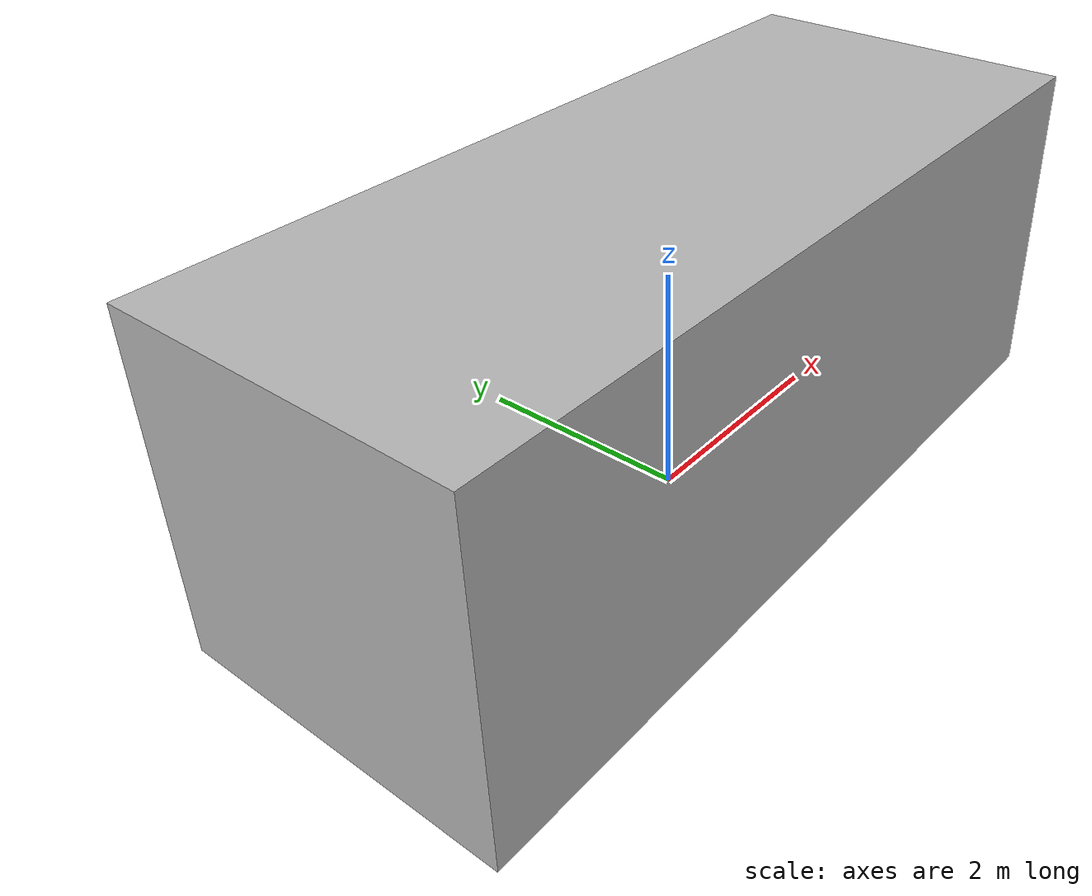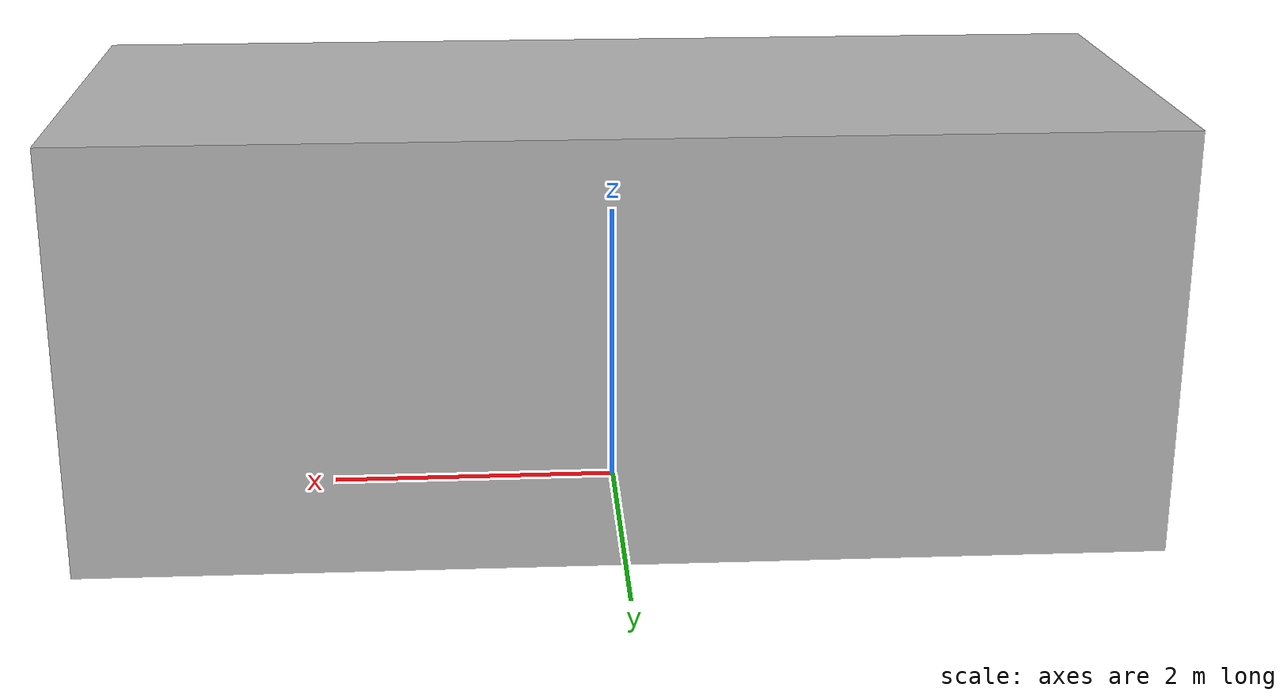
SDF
<?xml version="1.0"?>
<sdf version="1.4">
  <model name="low_poly_cargo_container">
    <pose>0 0 0 0 0 0</pose>
    <static>false</static>
    <link name="low_poly_cargo_container">
      <inertial>
        <mass>3000</mass>
        <inertia>
            <ixx>100</ixx>
            <ixy>0</ixy>
            <ixz>0</ixz>
            <iyy>100</iyy>
            <iyz>0</iyz>
            <izz>100</izz>
          </inertia>
      </inertial>
      <collision name="collision">
        <pose>0 0 1.5 0 0 0</pose>
        <geometry>
          <box>
            <size>7.2 3 2.85</size>
          </box>
        </geometry>
      </collision>
      <visual name="visual">
        <geometry>
          <mesh>
            <uri>model://low_poly_cargo_container/low_poly_cargo_container.dae</uri>
          </mesh>
        </geometry>
      </visual>
    </link>
  </model>
</sdf>
